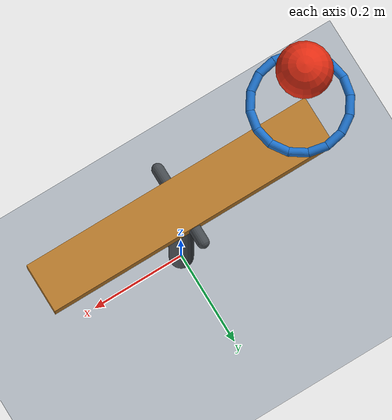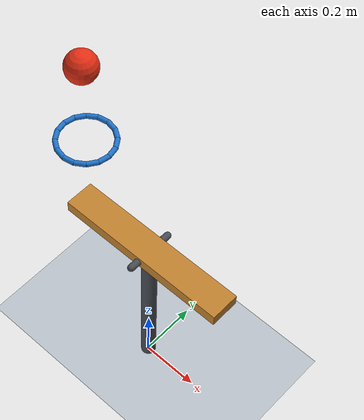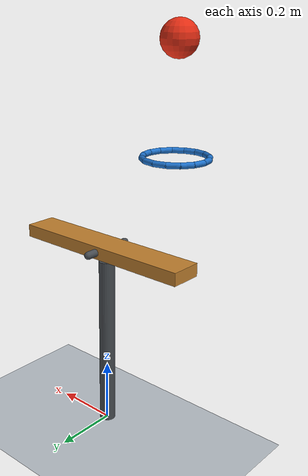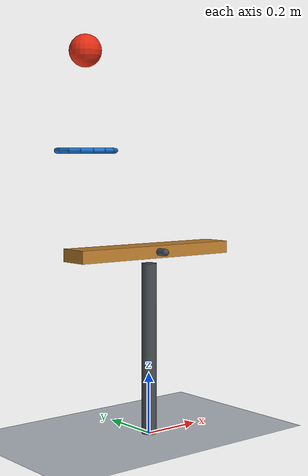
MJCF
<mujoco model="ball_ring_lever">
  <compiler angle="degree" inertiafromgeom="true"/>
  <option timestep="0.002" gravity="0 0 -9.81" integrator="implicitfast" solver="Newton" iterations="80"/>
  <size nconmax="128" njmax="512"/>

  <!-- MuJoCo has no direct restitution attribute. The contact damping ratio below approximates restitution 0.04. -->
  <!-- Sliding friction is 0.72; rolling friction lets the ball settle after reaching the floor. -->
  <!-- There are no slide joints. The lever hinge has damping 0.04 N m s/rad. -->

  <visual>
    <headlight ambient="0.4 0.4 0.4" diffuse="0.7 0.7 0.7" specular="0.2 0.2 0.2"/>
  </visual>

  <worldbody>
    <light name="scene_light" pos="-1 -2 3" dir="0.3 0.4 -1"/>
    <camera name="overview" pos="-1.6 -2.2 1.5" xyaxes="0.81 -0.59 0 0.23 0.32 0.92"/>

    <geom name="floor" type="plane" pos="0 0 0" size="3 3 0.1" friction="0.72 0.005 0.005" condim="6" solref="0.008 0.715646" solimp="0.95 0.95 0.001" rgba="0.72 0.75 0.78 1"/>

    <!-- Ball center starts 0.30 m above the horizontal ring plane. -->
    <body name="ball1" pos="-0.25 0 1.22">
      <freejoint name="ball1_free"/>
      <geom name="ball1_sphere" type="sphere" size="0.05" mass="0.20" friction="0.72 0.005 0.005" condim="6" solref="0.008 0.715646" solimp="0.95 0.95 0.001" rgba="0.9 0.18 0.08 1"/>
    </body>

    <!-- Fixed horizontal ring, approximated by sixteen capsules. -->
    <!-- Centerline radius 0.09 m; inner tangent radius 0.08 m gives 0.16 m clear diameter. -->
    <body name="ring1" pos="-0.25 0 0.92">
      <geom name="ring1_00" type="capsule" fromto="0.090000 0 0 0.083149158 0.034441509 0" size="0.008270675" friction="0.72 0.005 0.005" solref="0.008 0.715646" solimp="0.95 0.95 0.001" rgba="0.12 0.45 0.8 1"/>
      <geom name="ring1_01" type="capsule" fromto="0.083149158 0.034441509 0 0.063639610 0.063639610 0" size="0.008270675" friction="0.72 0.005 0.005" solref="0.008 0.715646" solimp="0.95 0.95 0.001" rgba="0.12 0.45 0.8 1"/>
      <geom name="ring1_02" type="capsule" fromto="0.063639610 0.063639610 0 0.034441509 0.083149158 0" size="0.008270675" friction="0.72 0.005 0.005" solref="0.008 0.715646" solimp="0.95 0.95 0.001" rgba="0.12 0.45 0.8 1"/>
      <geom name="ring1_03" type="capsule" fromto="0.034441509 0.083149158 0 0 0.090000 0" size="0.008270675" friction="0.72 0.005 0.005" solref="0.008 0.715646" solimp="0.95 0.95 0.001" rgba="0.12 0.45 0.8 1"/>
      <geom name="ring1_04" type="capsule" fromto="0 0.090000 0 -0.034441509 0.083149158 0" size="0.008270675" friction="0.72 0.005 0.005" solref="0.008 0.715646" solimp="0.95 0.95 0.001" rgba="0.12 0.45 0.8 1"/>
      <geom name="ring1_05" type="capsule" fromto="-0.034441509 0.083149158 0 -0.063639610 0.063639610 0" size="0.008270675" friction="0.72 0.005 0.005" solref="0.008 0.715646" solimp="0.95 0.95 0.001" rgba="0.12 0.45 0.8 1"/>
      <geom name="ring1_06" type="capsule" fromto="-0.063639610 0.063639610 0 -0.083149158 0.034441509 0" size="0.008270675" friction="0.72 0.005 0.005" solref="0.008 0.715646" solimp="0.95 0.95 0.001" rgba="0.12 0.45 0.8 1"/>
      <geom name="ring1_07" type="capsule" fromto="-0.083149158 0.034441509 0 -0.090000 0 0" size="0.008270675" friction="0.72 0.005 0.005" solref="0.008 0.715646" solimp="0.95 0.95 0.001" rgba="0.12 0.45 0.8 1"/>
      <geom name="ring1_08" type="capsule" fromto="-0.090000 0 0 -0.083149158 -0.034441509 0" size="0.008270675" friction="0.72 0.005 0.005" solref="0.008 0.715646" solimp="0.95 0.95 0.001" rgba="0.12 0.45 0.8 1"/>
      <geom name="ring1_09" type="capsule" fromto="-0.083149158 -0.034441509 0 -0.063639610 -0.063639610 0" size="0.008270675" friction="0.72 0.005 0.005" solref="0.008 0.715646" solimp="0.95 0.95 0.001" rgba="0.12 0.45 0.8 1"/>
      <geom name="ring1_10" type="capsule" fromto="-0.063639610 -0.063639610 0 -0.034441509 -0.083149158 0" size="0.008270675" friction="0.72 0.005 0.005" solref="0.008 0.715646" solimp="0.95 0.95 0.001" rgba="0.12 0.45 0.8 1"/>
      <geom name="ring1_11" type="capsule" fromto="-0.034441509 -0.083149158 0 0 -0.090000 0" size="0.008270675" friction="0.72 0.005 0.005" solref="0.008 0.715646" solimp="0.95 0.95 0.001" rgba="0.12 0.45 0.8 1"/>
      <geom name="ring1_12" type="capsule" fromto="0 -0.090000 0 0.034441509 -0.083149158 0" size="0.008270675" friction="0.72 0.005 0.005" solref="0.008 0.715646" solimp="0.95 0.95 0.001" rgba="0.12 0.45 0.8 1"/>
      <geom name="ring1_13" type="capsule" fromto="0.034441509 -0.083149158 0 0.063639610 -0.063639610 0" size="0.008270675" friction="0.72 0.005 0.005" solref="0.008 0.715646" solimp="0.95 0.95 0.001" rgba="0.12 0.45 0.8 1"/>
      <geom name="ring1_14" type="capsule" fromto="0.063639610 -0.063639610 0 0.083149158 -0.034441509 0" size="0.008270675" friction="0.72 0.005 0.005" solref="0.008 0.715646" solimp="0.95 0.95 0.001" rgba="0.12 0.45 0.8 1"/>
      <geom name="ring1_15" type="capsule" fromto="0.083149158 -0.034441509 0 0.090000 0 0" size="0.008270675" friction="0.72 0.005 0.005" solref="0.008 0.715646" solimp="0.95 0.95 0.001" rgba="0.12 0.45 0.8 1"/>
    </body>

    <!-- Visual pedestal and axle; the hinge itself supplies the fixed support. -->
    <body name="lever1_support" pos="0 0 0">
      <geom name="lever1_support_post" type="cylinder" pos="0 0 0.28" size="0.025 0.28" contype="0" conaffinity="0" rgba="0.28 0.3 0.32 1"/>
      <geom name="lever1_support_axle" type="capsule" fromto="0 -0.08 0.60 0 0.08 0.60" size="0.012" contype="0" conaffinity="0" rgba="0.28 0.3 0.32 1"/>
    </body>

    <!-- Lever top starts at z=0.62. Ball first touches with its center at z=0.67, 0.25 m below the ring plane. -->
    <body name="lever1" pos="0 0 0.60">
      <joint name="lever1_hinge" type="hinge" pos="0 0 0" axis="0 1 0" damping="0.04" limited="true" range="-55 55" solreflimit="0.008 1"/>
      <geom name="lever1_bar" type="box" size="0.30 0.05 0.02" mass="0.50" friction="0.72 0.005 0.005" condim="6" solref="0.008 0.715646" solimp="0.95 0.95 0.001" rgba="0.75 0.5 0.18 1"/>
    </body>
  </worldbody>

  <keyframe>
    <key name="start" time="0" qpos="-0.25 0 1.22 1 0 0 0 0" qvel="0 0 0 0 0 0 0"/>
  </keyframe>
</mujoco>
